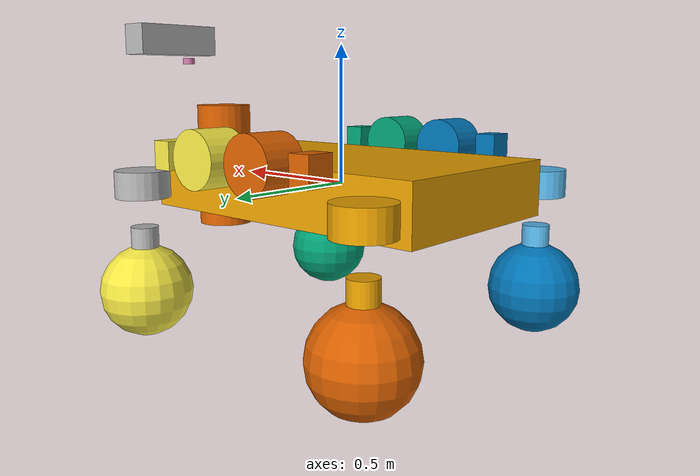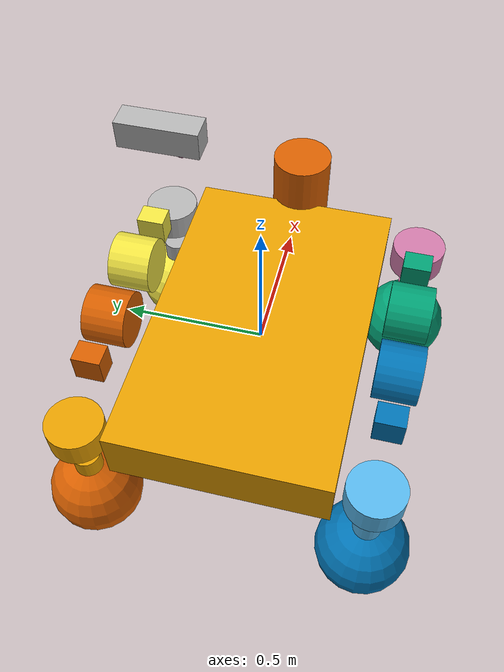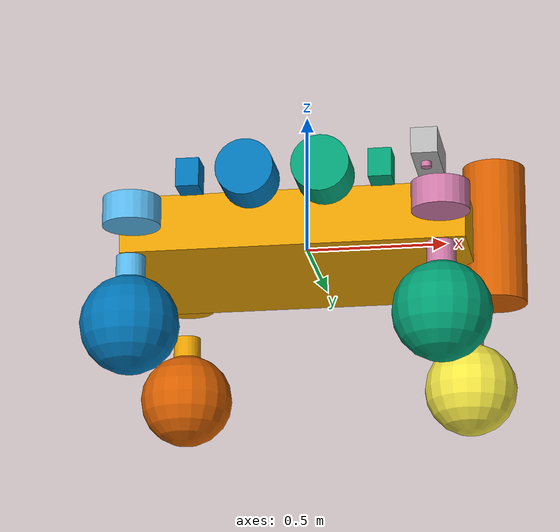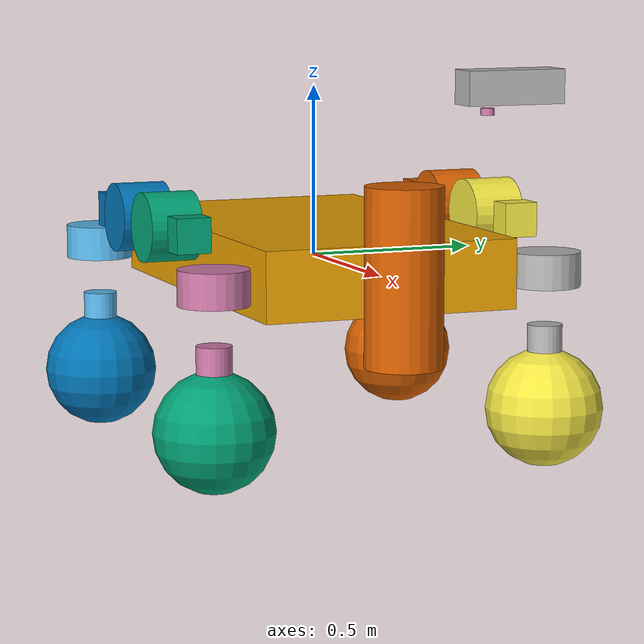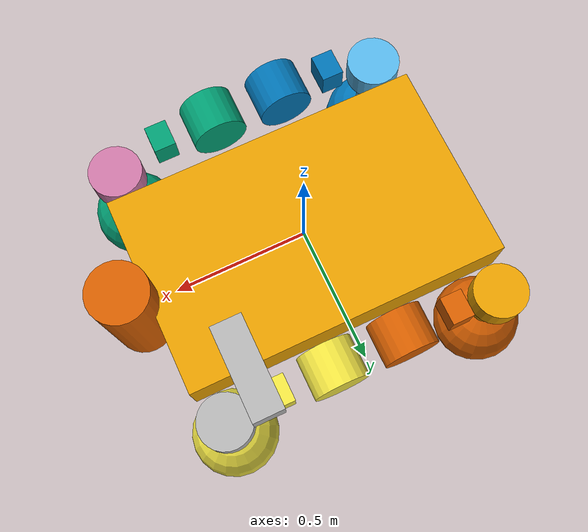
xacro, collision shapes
<?xml version="1.0"?>
<!--
	Space Robotics Challenge Phase 2
	NASA-JSC
	Copyright (c) 2020, All Rights Reserved
	Unauthorized distribution strictly prohibited
-->

<!--
    @brief small scout for srcp2 final rounds
-->
<robot name="small_scout" xmlns:xacro="http://ros.org/wiki/xacro">

   <xacro:arg name="rover_name" default="small_scout" />

    <!-- includes: hardware -->
    <xacro:include filename="../common/inertia_macros.xacro"/>
    <xacro:include filename="../small_basic/small_rover_chassis.xacro"/>
    <xacro:include filename="../small_basic/small_rover_drive.xacro"/>
    <xacro:include filename="../small_basic/small_rover_power.xacro"/>

    <!-- scout hardware -->
    <xacro:small_rover_chassis  rover_name="$(arg rover_name)"/>
    <xacro:small_rover_drive    rover_name="$(arg rover_name)"/>

    <!-- includes: sensor electronics -->
    <xacro:include filename="../small_basic/small_rover_sensors.xacro"/>
    <xacro:small_rover_camera_sensor    rover_name="$(arg rover_name)"/>
    <xacro:small_rover_imu_sensor       rover_name="$(arg rover_name)"/>
    <xacro:small_rover_lidar_sensor     rover_name="$(arg rover_name)"/>

    <xacro:include filename="../small_basic/small_rover_sensors.gazebo"/>

    <!-- includes: volatile sensor -->
    <xacro:include filename="./volatile_sensor.xacro"/>
    <xacro:volatile_sensor rover_name="$(arg rover_name)"/>

    <!-- includes: motors (drive and sensor) -->
    <xacro:include filename="./motors.gazebo"/>

    <gazebo>
        <plugin name="joint_state_publisher" filename="libJointStatePublisher.so">
            <robotNamespace>$(arg rover_name)</robotNamespace>
            <jointName>
                    bl_wheel_joint,
                    br_wheel_joint,
                    fl_wheel_joint,
                    fr_wheel_joint,
                    bl_steering_arm_tibia_joint,
                    br_steering_arm_tibia_joint,
                    fl_steering_arm_tibia_joint,
                    fr_steering_arm_tibia_joint,
                    bl_steering_arm_shoulder_joint,
                    br_steering_arm_shoulder_joint,
                    fl_steering_arm_shoulder_joint,
                    fr_steering_arm_shoulder_joint,
                    sensor_bar_pitch_joint,
                    sensor_bar_yaw_joint,
                    volatile_sensor_joint
            </jointName>
            <updateRate>100</updateRate>
            <alwaysOn>true</alwaysOn>
        </plugin>
    </gazebo>

</robot>

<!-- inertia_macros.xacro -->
<!--
	Space Robotics Challenge Phase 2
	NASA-JSC
	Copyright (c) 2020, All Rights Reserved
	Unauthorized distribution strictly prohibited
-->
<robot xmlns:xacro="http://www.ros.org/wiki/xacro">

    <!--
        @brief compute the moments of inertia of a cylinder
        @param m - mass (kg)
        @param r - radius (m)
        @param h - height (m)
    -->
    <xacro:macro name="cylinder_inertia" params="m r h">
        <inertia
            ixx="${m*(3.0*r*r+h*h)/12.0}" ixy = "0" ixz = "0"
            iyy="${m*(3.0*r*r+h*h)/12.0}" iyz = "0"
            izz="${m*r*r/2.0}"
        />
    </xacro:macro>

    <!--
        @brief compute the moments of inertia of a box
        @param m - mass (kg)
        @param x,y,z - dimensions (m)
    -->
    <xacro:macro name="box_inertia" params="m x y z">
        <inertia
            ixx="${m*(y*y+z*z)/12.0}" ixy = "0" ixz = "0"
            iyy="${m*(x*x+z*z)/12.0}" iyz = "0"
            izz="${m*(x*x+y*y)/12.0}"
        />
    </xacro:macro>

    <!--
        @brief compute the moments of inertia of a sphere
        @param m - mass (kg)
        @param r - radius (m)
    -->
    <xacro:macro name="sphere_inertia" params="m r">
        <inertia
            ixx="${2.0*m*r*r/5.0}" ixy = "0" ixz = "0"
            iyy="${2.0*m*r*r/5.0}" iyz = "0"
            izz="${2.0*m*r*r/5.0}"
        />
    </xacro:macro>
</robot>

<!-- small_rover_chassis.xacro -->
<!--
	Space Robotics Challenge Phase 2
	NASA-JSC
	Copyright (c) 2020, All Rights Reserved
	Unauthorized distribution strictly prohibited
-->
<robot xmlns:xacro="http://ros.org/wiki/xacro">

    <!--
       small rover chassis and all related constants
    -->
    <xacro:macro name="small_rover_chassis" params="rover_name">
        <xacro:include filename="../common/universal_chassis.xacro"/>

        <xacro:property name="chassis_collision_x" value="1.2"/>
        <xacro:property name="chassis_collision_y" value="0.75"/>
        <xacro:property name="chassis_collision_z" value="0.2"/>

        <xacro:universal_chassis
            chassis_name = "small_chassis"
            mass = "40.0"
            dae_path   = "meshes/rovers/small_basic/small_chassis.dae"
            visual_xyz = "0 0 0"
            visual_rpy = "0 0 ${pi/2}"
            visual_scale = "0.35 0.35 0.35"
            rover_name = "${rover_name}"/>

    </xacro:macro>
</robot>

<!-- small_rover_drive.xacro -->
<!--
	Space Robotics Challenge Phase 2
	NASA-JSC
	Copyright (c) 2020, All Rights Reserved
	Unauthorized distribution strictly prohibited
-->
<robot xmlns:xacro="http://ros.org/wiki/xacro">

    <xacro:macro name="small_rover_drive" params="rover_name">

        <xacro:property name="steering_arm_length" value="0.4"/>

        <xacro:property name="shoulder_mass"    value="2.00"/>  <!-- kg -->
        <xacro:property name="shoulder_length"  value="0.40"/>
        <xacro:property name="shoulder_joint_x" value="0.13"/>
        <xacro:property name="shoulder_joint_y" value="0.50"/>
        <xacro:property name="shoulder_joint_z" value="0.12"/>
        <xacro:property name="shoulder_joint_pitch" value="0.0"/>

        <xacro:property name="shoulder_joint_visual_scale" value="0.5 0.5 0.5"/>
        <xacro:property name="shoulder_joint_visual_xyz"   value="0 0 0"/>

        <xacro:property name="shoulder_upper_limit"    value="${pi/12.0}"/>  <!-- rads -->
        <xacro:property name="shoulder_lower_limit"    value="-${pi/12.0}"/> <!-- rads -->
        <xacro:property name="shoulder_velocity_limit" value="${pi/12.0}"/>  <!-- rads/sec -->
        <xacro:property name="shoulder_effort_limit"   value="1e4"/>         <!-- Nm -->

        <xacro:property name="shoulder_damping"   value="5" /> <!-- Nm/rad/s -->
        <xacro:property name="shoulder_friction"  value="5" /> <!-- Nm ??? -->
        <xacro:property name="shoulder_stiffness" value="400"/>  <!-- Nm/rads -->

        <xacro:property name="tibia_mass"                 value="10.0"/>      <!-- kg -->
        <xacro:property name="tibia_collision_length"     value="0.4"/>
        <xacro:property name="tibia_collision_radius"     value="0.05"/>
        <xacro:property name="ankle_joint_effort_limit"   value="200"/>       <!-- Nm -->
        <xacro:property name="ankle_joint_velocity_limit" value="${pi/4.0}"/> <!-- rad/sec -->

        <!-- all shoulder joints and femurs -->
        <xacro:include filename="../common/universal_shoulder.xacro"/>
        <xacro:property name="shoulder_mesh" value="meshes/rovers/small_basic/small_steering_arm.dae"/>

        <xacro:universal_shoulder
            name     = "${rover_name}_fr_steering_arm_shoulder"
            parent   = "${rover_name}_small_chassis"
            lr_sign  = "-1"
            fb_sign  = "1"
            visual_xyz="0 0 0"
            visual_rpy="0 0 ${pi/2}"
            shoulder="fr_steering_arm_shoulder"
        />

        <xacro:universal_shoulder
            name     = "${rover_name}_fl_steering_arm_shoulder"
            parent   = "${rover_name}_small_chassis"
            lr_sign  = "1"
            fb_sign  = "1"
            visual_xyz="0 0 0"
            visual_rpy="0 0 ${pi/2}"
            shoulder="fl_steering_arm_shoulder"
        />

        <!-- reset for the back arms, as they have to carry more weight -->
        <xacro:property name="shoulder_damping"   value="10" /> <!-- Nm/rad/s -->
        <xacro:property name="shoulder_friction"  value="10" /> <!-- Nm ??? -->
        <xacro:property name="shoulder_stiffness" value="600"/>  <!-- Nm/rads -->

        <xacro:universal_shoulder
            name     = "${rover_name}_br_steering_arm_shoulder"
            parent   = "${rover_name}_small_chassis"
            lr_sign  = "-1"
            fb_sign  = "-1"
            visual_xyz="0 0 0"
            visual_rpy="0 0 -${pi/2}"
            shoulder="br_steering_arm_shoulder"
        />

        <xacro:universal_shoulder
            name     = "${rover_name}_bl_steering_arm_shoulder"
            parent   = "${rover_name}_small_chassis"
            lr_sign  = "1"
            fb_sign  = "-1"
            visual_xyz="0 0 0"
            visual_rpy="0 0 -${pi/2}"
            shoulder="bl_steering_arm_shoulder"
        />

        <!-- All the Knee joints & tibias -->
        <xacro:include filename="../common/universal_tibia.xacro"/>
        <xacro:property name="tibia_mesh" value="meshes/rovers/small_basic/small_ankle.dae"/>

        <xacro:universal_tibia
            name        = "${rover_name}_fr_steering_arm_tibia"
            parent_name = "${rover_name}_fr_steering_arm_shoulder"
            visual_xyz  = "0 0 0"
            visual_rpy  = "0 0 ${pi/2}"
            visual_scale = "0.5 0.5 0.5"
            side_sign   = "-1"
            knee_joint_xyz="${steering_arm_length} 0 -0.12"
            tibia="fr_steering_arm_tibia"/>

        <xacro:universal_tibia
            name        = "${rover_name}_fl_steering_arm_tibia"
            parent_name = "${rover_name}_fl_steering_arm_shoulder"
            visual_xyz  = "0 0 0"
            visual_rpy  = "0 0 -${pi/2}"
            visual_scale = "0.5 0.5 0.5"
            side_sign   = "1"
            knee_joint_xyz="${steering_arm_length} 0 -0.12"
            tibia="fl_steering_arm_tibia"/>

        <xacro:universal_tibia
            name        = "${rover_name}_bl_steering_arm_tibia"
            parent_name = "${rover_name}_bl_steering_arm_shoulder"
            visual_xyz  = "0 0 0"
            visual_rpy  = "0 0 -${pi/2}"
            visual_scale = "0.5 0.5 0.5"
            side_sign   = "1"
            knee_joint_xyz="-${steering_arm_length} 0 -0.12"
            tibia="bl_steering_arm_tibia"/>

        <xacro:universal_tibia
            name        = "${rover_name}_br_steering_arm_tibia"
            parent_name = "${rover_name}_br_steering_arm_shoulder"
            visual_xyz  = "0 0 0"
            visual_rpy  = "0 0 ${pi/2}"
            visual_scale = "0.5 0.5 0.5"
            side_sign   = "-1"
            knee_joint_xyz="-${steering_arm_length} 0 -0.12"
            tibia="br_steering_arm_tibia"/>

        <!-- general wheel constanbts -->
        <xacro:property name="wheel_base"   value="1.0"/>
        <xacro:property name="wheel_length" value="1.0"/>
        <xacro:property name="wheel_radius" value="0.17"/>
        <xacro:property name="wheel_mass"   value="1.0"/>
        <xacro:property name="wheel_mesh"   value="meshes/rovers/common/wheel.dae"/>
        <xacro:property name="wheel_velocity_limit" value="${2*pi}"/>

        <!-- wheel axel properties -->
        <xacro:property name="wheel_effort_limit" value="300.0"/>
        <xacro:property name="wheel_damping"      value="0.1" />
        <xacro:property name="wheel_friction"     value="0.0" />

        <!-- wheel frictional model -->
        <xacro:property name="wheel_mu1"   value="0.5"/>
        <xacro:property name="wheel_mu2"   value="0.5"/>
        <xacro:property name="wheel_slip2" value="0.0"/>

        <!-- wheel torsional friction -->
        <xacro:property name="wheel_torsional_coef"   value="0.25"/>
        <xacro:property name="wheel_torsional_radius" value="0.025"/>

        <!-- wheel contact model -->
        <xacro:property name="wheel_kp"  value="1e12"/>
        <xacro:property name="wheel_kd"  value="0.8"/>
        <xacro:property name="wheel_soft_cfm" value="0.3"/>
        <xacro:property name="wheel_maxVel"   value="0.015"/>
        <xacro:property name="wheel_minDepth" value="0.10"/>

        <xacro:include filename="../common/universal_wheel.xacro"/>
        <xacro:small_wheel
            name="${rover_name}_fr_wheel"
            parent_name="${rover_name}_fr_steering_arm_tibia"
            visual_scale="0.55 0.55 0.55"
            visual_rpy="0 0 ${pi/2}"
            tibia_collision_length="-0.4"
            lr_sign = "-1"
            wheel="fr_wheel"/>

        <xacro:small_wheel
            name="${rover_name}_fl_wheel"
            parent_name="${rover_name}_fl_steering_arm_tibia"
            visual_scale="0.55 0.55 0.55"
            visual_rpy="0 0 ${pi/2}"
            tibia_collision_length="-0.4"
            lr_sign = "1"
            wheel="fl_wheel"/>

        <xacro:small_wheel
            name="${rover_name}_br_wheel"
            parent_name="${rover_name}_br_steering_arm_tibia"
            visual_scale="0.55 0.55 0.55"
            visual_rpy="0 0 ${pi/2}"
            tibia_collision_length="-0.4"
            lr_sign = "-1"
            wheel="br_wheel"/>

        <xacro:small_wheel
            name="${rover_name}_bl_wheel"
            parent_name="${rover_name}_bl_steering_arm_tibia"
            visual_scale="0.55 0.55 0.55"
            visual_rpy="0 0 ${pi/2}"
            tibia_collision_length="-0.4"
            lr_sign = "1"
            wheel="bl_wheel"/>

        <!-- _______________________________________________________________________________________________________________
            Common DRIVE, STEERING and BRAKE Plugins
        -->
        <gazebo>
            <plugin name="rover_brake" filename="libRoverBrakePlugin.so"/>
        </gazebo>

        <!-- _______________________________________________________________________________________________________________
            Localization
        -->
        <gazebo>
            <plugin name="rover_localization" filename="libRoverLocalization.so"/>
        </gazebo>

    </xacro:macro>
</robot>

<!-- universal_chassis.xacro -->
<!--
	Space Robotics Challenge Phase 2
	NASA-JSC
	Copyright (c) 2020, All Rights Reserved
	Unauthorized distribution strictly prohibited
-->
<robot xmlns:xacro="http://ros.org/wiki/xacro">

    <xacro:macro name="universal_chassis" params="chassis_name mass dae_path visual_xyz visual_rpy visual_scale rover_name">

        <link name="${rover_name}_${chassis_name}">
            <collision name="${rover_name}_${chassis_name}_collision">
                <origin
                    xyz="0 0 0"
                    rpy="0 0 0"/>
               <geometry>
                    <box size = "${chassis_collision_x} ${chassis_collision_y} ${chassis_collision_z}"/>
                </geometry>
            </collision>

            <visual name="${rover_name}_${chassis_name}_visual">
                <origin
                    xyz="${visual_xyz}"
                    rpy="${visual_rpy}"/>
               <geometry>
                    <mesh
                        filename = "package://srcp2_models_final/${dae_path}"
                        scale = "${visual_scale}"/>
                </geometry>
            </visual>

            <inertial>
                <origin
                    xyz="0 0 0"
                    rpy="0 0 0"/>
                <mass value="${mass}"/>
                <xacro:box_inertia
                    m = "${mass}"
                    x = "${chassis_collision_x}"
                    y = "${chassis_collision_y}"
                    z = "${chassis_collision_z}"/>
            </inertial>
        </link>

        <link name="${rover_name}_base_footprint" />
        <joint name="base_joint" type="fixed">
            <origin
                xyz="0 0 0"
                rpy="0 0 0" />
            <parent link="${rover_name}_base_footprint"/>
            <child link="${rover_name}_${chassis_name}"/>
        </joint>

    </xacro:macro>
</robot>

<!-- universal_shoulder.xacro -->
<!--
	Space Robotics Challenge Phase 2
	NASA-JSC
	Copyright (c) 2020, All Rights Reserved
	Unauthorized distribution strictly prohibited
-->
<robot xmlns:xacro="http://ros.org/wiki/xacro">

    <!--
        TODO: Transmission
        Is transmission necessary for unpowered joints?
        Is it necessary at all for new style motors?
    -->

    <xacro:macro name="universal_shoulder" params="name parent lr_sign fb_sign visual_xyz visual_rpy shoulder">

        <!-- arm collision box dimensions (meters) -->
        <xacro:property name="femur_box_x" value="${shoulder_length}"/>
        <xacro:property name="femur_box_y" value="0.1"/>
        <xacro:property name="femur_box_z" value="0.1"/>

        <!-- as this is where the arm joins the body, strut and shoulder origins are relative to this-->
        <xacro:macro name="shoulder_joint_origin">
            <origin
                xyz="${fb_sign*shoulder_joint_x} ${lr_sign*shoulder_joint_y} ${shoulder_joint_z}"
                rpy="0 ${fb_sign * shoulder_joint_pitch} 0"/>
        </xacro:macro>
        <xacro:macro name="shoulder_strut_origin">
            <origin
                xyz="${fb_sign * (femur_box_x/2.0)} 0 0"
                rpy="0 0 0"/>
        </xacro:macro>
        <xacro:macro name="strut_visual_origin">
            <origin
                xyz="${visual_xyz}"
                rpy="${visual_rpy}"/>
        </xacro:macro>

        <!-- Main Steering Arm Geometry -->
        <link name="${name}">

            <collision name="${name}_strut_collision">
                <xacro:shoulder_strut_origin/>
                <geometry>
                    <box size = "${femur_box_x*0.2} ${femur_box_y} ${femur_box_z}"/>
                </geometry>
            </collision>
            <visual name="${name}_strut_visual">
                <xacro:strut_visual_origin/>
                <geometry>
                    <mesh
                        filename = "package://srcp2_models_final/${shoulder_mesh}"
                        scale = "${shoulder_joint_visual_scale}"/>
                </geometry>
            </visual>

            <collision name="${name}_collision">
                <origin
                    xyz="0 0 0"
                    rpy="${pi/2.0} 0 0"/>
                <geometry>
                    <cylinder length="${1.5*femur_box_y}" radius="${femur_box_z}"/>
                </geometry>
            </collision>

            <!-- only the strut has inertial presense -->
            <inertial>
                <mass value = "${shoulder_mass}"/>
                <xacro:shoulder_strut_origin/>
                <xacro:box_inertia
                    m = "${shoulder_mass}"
                    x = "${femur_box_x}"
                    y = "${femur_box_y}"
                    z = "${femur_box_z}"/>
            </inertial>
        </link>

        <!-- connection of steering arm to rover chassis -->
        <joint name="${shoulder}_joint" type="revolute">
            <xacro:shoulder_joint_origin/>
            <parent link = "${parent}"/>
            <child  link = "${name}"/>
            <axis xyz="0 1 0" rpy="0 0 0" />
            <fdir1>0 1 0</fdir1>
            <dynamics
                damping  = "${shoulder_damping}"
                friction = "${shoulder_friction}"/>
            <limit
                upper    = "${shoulder_upper_limit}"
                lower    = "${shoulder_lower_limit}"
                effort   = "${shoulder_effort_limit}"
                velocity = "${shoulder_velocity_limit}"/>
        </joint>

        <!-- non URDF Gazebo Specific Physics for chassis connection joint -->
        <gazebo reference="${shoulder}_joint">
            <implicitSpringDamper>true</implicitSpringDamper>
            <springStiffness>${shoulder_stiffness}</springStiffness>
            <springReference>0</springReference>
        </gazebo>

        <!-- todo: as this is an unpowered joint, is this necessary? -->

    </xacro:macro>
</robot>

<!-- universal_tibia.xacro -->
<!--
	Space Robotics Challenge Phase 2
	NASA-JSC
	Copyright (c) 2020, All Rights Reserved
	Unauthorized distribution strictly prohibited
-->
<robot xmlns:xacro="http://ros.org/wiki/xacro">
    <xacro:macro name="universal_tibia" params="name parent_name visual_xyz visual_rpy visual_scale side_sign knee_joint_xyz tibia">

        <!-- this is where the knee joins the strut, and knee ankle links origins are relative to this -->
        <xacro:macro name="knee_joint_origin">
            <origin
                xyz="${knee_joint_xyz}"
                rpy="0 0 0"/>
        </xacro:macro>
        <xacro:macro name="knee_motor_origin">
            <origin
                xyz="0 0 0"
                rpy="0 0 0"/>
        </xacro:macro>
        <xacro:macro name="tibia_strut_origin">
            <origin
                xyz="0 0 ${-tibia_collision_length/2.0}"
                rpy="0 0 0"/>
        </xacro:macro>

        <!-- Knee Link Geometry -->
        <link name="${name}">

            <collision name="${name}_knee_joint_collision">
                <xacro:knee_motor_origin/>
                <geometry>
                    <cylinder radius="0.1" length="0.1"/>
                </geometry>
            </collision>

            <collision name="${name}_strut_collision">
                <xacro:tibia_strut_origin/>
                <geometry>
                    <cylinder radius="${tibia_collision_radius}" length="${0.2*tibia_collision_length}"/>
                </geometry>
            </collision>
            <visual name="${name}_strut_visual">
                <origin
                    xyz="${visual_xyz}"
                    rpy="${visual_rpy}"/>
               <geometry>
                    <mesh
                        filename = "package://srcp2_models_final/${tibia_mesh}"
                        scale = "${visual_scale}"/>
                </geometry>
            </visual>

            <inertial>
                <mass value = "${tibia_mass}"/>
                <xacro:tibia_strut_origin/>
                <xacro:cylinder_inertia
                    m="${tibia_mass}"
                    r="${tibia_collision_radius}"
                    h="${tibia_collision_length}"/>
            </inertial>
        </link>

        <!-- connection of tibia to steering arm chassis  -->
        <joint name="${tibia}_joint" type="revolute">
            <xacro:knee_joint_origin/>
            <parent link = "${parent_name}"/>
            <child  link = "${name}"/>
            <axis xyz="0 0 1" rpy="0 0 0" />
            <fdir1>0 1 0</fdir1>
            <limit
                effort   = "${ankle_joint_effort_limit}"
                velocity = "${ankle_joint_velocity_limit}"
                upper    = "${pi}"
                lower    = "${-pi}"/>
        </joint>

        <gazebo reference="${tibia}_joint">
            <provideFeedback>true</provideFeedback>
        </gazebo>

    </xacro:macro>
</robot>

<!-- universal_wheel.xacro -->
<!--
	Space Robotics Challenge Phase 2
	NASA-JSC
	Copyright (c) 2020, All Rights Reserved
	Unauthorized distribution strictly prohibited
-->
<robot xmlns:xacro="http://ros.org/wiki/xacro">

    <xacro:macro name="small_wheel" params="name parent_name lr_sign visual_scale visual_rpy tibia_collision_length wheel">

        <xacro:macro name="small_wheel_joint_origin">
            <origin
                xyz="0 0 ${tibia_collision_length}"
                rpy="0 0 0"/>
        </xacro:macro>
        <xacro:macro name="collision_origin">
            <origin
                xyz="0 0 0"
                rpy="0 0 0"/>
        </xacro:macro>
        <xacro:macro name="visual_origin">
            <origin
                xyz="0 0 0"
                rpy="${visual_rpy}"/>
        </xacro:macro>

        <link name="${name}">
            <collision name="${name}_colision">
                <xacro:collision_origin/>
                <geometry>
                    <sphere radius="${wheel_radius}"/>
                </geometry>
                <surface>
                    <contact>
                        <ode>
                            <kp>${wheel_kp}</kp>
                            <kd>${wheel_kd}</kd>
                            <mu1>${wheel_mu1}</mu1>
                            <mu2>${wheel_mu2}</mu2>
                            <soft_cfm>${wheel_soft_cfm}</soft_cfm>
                            <slip2>${wheel_slip2}</slip2>
                            <maxVel>${wheel_maxVel}</maxVel>
                            <minDepth>${wheel_minDepth}</minDepth>
                        </ode>
                    </contact>
                </surface>
            </collision>

            <visual name="${name}_visual">
                <xacro:visual_origin/>
                <geometry>
                    <mesh
                        filename = "package://srcp2_models_final/${wheel_mesh}"
                        scale = "${visual_scale}"/>
                </geometry>
            </visual>

            <inertial>
                <xacro:collision_origin/>
                <mass value="${wheel_mass}"/>
                <xacro:cylinder_inertia
                    m="${wheel_mass}"
                    r="${wheel_radius}"
                    h="${wheel_base}"/>
            </inertial>
        </link>

        <joint name="${wheel}_joint" type="continuous">
            <xacro:small_wheel_joint_origin/>
            <parent link = "${parent_name}"/>
            <child  link = "${name}"/>
            <axis
                xyz = "0 1 0"
                rpy = "0 0 0" />
            <limit
                effort   = "${wheel_effort_limit}"
                velocity = "${wheel_velocity_limit}"/>
            <dynamics
                damping  = "${wheel_damping}"
                friction = "${wheel_friction}"/>
        </joint>

        <gazebo reference="${wheel}_joint">
            <provideFeedback>true</provideFeedback>
        </gazebo>

    </xacro:macro>
</robot>

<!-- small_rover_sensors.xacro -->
<!--
	Space Robotics Challenge (2)
	NASA-JSC
	Copyright (c) 2020, All Rights Reserved
	Unauthorized distribution strictly prohibited
-->
<robot xmlns:xacro="http://www.ros.org/wiki/xacro">
  <xacro:macro name="small_rover_camera_sensor" params="rover_name">

    <xacro:property name="camera_size_x" value="0.10"/> <!-- meters-->
    <xacro:property name="camera_size_y" value="0.30"/> <!-- meters-->
    <xacro:property name="camera_size_z" value="0.10"/> <!-- meters-->
    <xacro:property name="camera_mass"   value="2.0"/>  <!-- kg -->

    <xacro:macro name="sensor_bar_yaw_joint_origin">
      <origin xyz="0.39 0.38 0.44" rpy="0 0 0"/>
    </xacro:macro>
    <xacro:macro name="sensor_bar_pitch_joint_origin">
      <origin xyz="0.0 0.0 0.02" rpy="0 0 0"/>
    </xacro:macro>

  <!-- Empty link to give the sensor bar a yaw DoF
       (motor plugin does not control multi-dof single joints) -->
    <link name="${rover_name}_sensor_bar_yaw_motor">
      <collision>
          <geometry>
            <cylinder radius="0.02" length="0.02"/>
          </geometry>
      </collision>
      <visual>
          <geometry>
            <cylinder radius="0.02" length="0.02"/>
          </geometry>
      </visual>

      <inertial>
        <mass value="0.2"/>
        <xacro:cylinder_inertia
          m="0.2"
          r="0.02"
          h="0.02"/>
      </inertial>
    </link>

    <joint name="sensor_bar_yaw_joint" type="revolute">
      <xacro:sensor_bar_yaw_joint_origin/>
      <parent link="${rover_name}_small_chassis"/>
      <child  link="${rover_name}_sensor_bar_yaw_motor"/>
      <axis   xyz="0 0 1"/>
      <limit
              upper    = "${pi}"
              lower    = "-${pi}"
              effort   = "10"
              velocity = "0.01"/>
      <!-- Some joint damping is necessary for this joint, as it's a powerful -->
      <!-- motor and a light link. Without this, the PID controller must be  -->
      <!-- perfectly tuned to prevent oscillations -->
      <dynamics
            damping  = "10"
            friction = "1"/>
    </joint>

    <!-- The Sensor Bar, stereo-cameras, Lidar and spotlight live here -->
    <link name="${rover_name}_sensor_bar">

      <collision>
        <origin xyz="0 0.07 0.05" rpy="0 0 0"/>
        <geometry>
          <box size="${camera_size_x} ${camera_size_y} ${camera_size_z}"/>
        </geometry>
      </collision>

      <visual>
        <origin xyz="0.5 -0.335 -0.52" rpy="0 0 ${pi}"/>
        <geometry>
            <mesh
                filename = "package://srcp2_models_final/meshes/rovers/small_basic/sensor_bar.dae"
                scale    = "0.4 0.4 0.4"/>
        </geometry>
      </visual>

      <inertial>
        <origin xyz="0 0.07 0.05" rpy="0 0 0"/>
        <mass value="${camera_mass}"/>
        <xacro:box_inertia
            m="${camera_mass}"
            x="${camera_size_x}"
            y="${camera_size_y}"
            z="${camera_size_z}"/>
      </inertial>
    </link>

    <joint name="sensor_bar_pitch_joint" type="revolute">
      <xacro:sensor_bar_pitch_joint_origin/>
      <axis   xyz="0 1 0"/>
      <parent link="${rover_name}_sensor_bar_yaw_motor"/>
      <child  link="${rover_name}_sensor_bar"/>
      <limit
              upper    = "${pi/3}"
              lower    = "-${pi/3}"
              effort   = "3.0"
              velocity = "0.25"/>
     <!-- Some joint damping is necessary for this joint, as it's a powerful -->
     <!-- motor and a light link. Without this, the PID controller must be  -->
     <!-- perfectly tuned to prevent oscillations -->
      <dynamics
          damping  = "20"
          friction = "1"/>
    </joint>

    <!-- The Left Camera Optical Link -->
    <link name="${rover_name}_left_camera_optical">
    </link>
    <joint name="left_camera_optical_joint" type="fixed">
        <parent link="${rover_name}_sensor_bar"/>
        <child link="${rover_name}_left_camera_optical"/>
        <origin xyz="0.2 0.2 0.05" rpy="-1.57 0 -1.57"/>
    </joint>

    <!-- The Right Camera Optical Link -->
    <link name="${rover_name}_right_camera_optical">
    </link>
    <joint name="right_camera_optical_joint" type="fixed">
        <parent link="${rover_name}_sensor_bar"/>
        <child link="${rover_name}_right_camera_optical"/>
        <origin xyz="0.2 -0.01 0.05" rpy="-1.57 0 -1.57"/>
    </joint>

  </xacro:macro>

  <!-- The Small Rover Lidar -->
  <xacro:macro name="small_rover_lidar_sensor" params="rover_name">
      <link name="${rover_name}_lidar_link">
      </link>

      <joint name="lidar_joint" type="fixed">
          <parent link="${rover_name}_sensor_bar"/>
          <child link="${rover_name}_lidar_link"/>
          <origin xyz="0.1 0.075 0" rpy="0 0 0"/>
      </joint>

  </xacro:macro>

  <!-- The Small Rover IMU -->
  <xacro:macro name="small_rover_imu_sensor" params="rover_name">
      <xacro:property name="imuSize" value="0.05"/>
      <xacro:property name="imuMass" value="1e-5"/>

      <link name="${rover_name}_imu_link">
          <inertial>
              <origin xyz="0 0 0" rpy="0 ${pi/2} 0" />
              <mass value="${imuMass}" />
              <xacro:cylinder_inertia
              m="${imuMass}" r="${imuSize}" h="${imuSize}" />
          </inertial>
      </link>

      <joint name="imu_joint" type="fixed">
          <parent link="${rover_name}_small_chassis"/>
          <child link="${rover_name}_imu_link"/>
          <origin xyz="0 0 0" rpy="0 0 0"/>
      </joint>

  </xacro:macro>

</robot>

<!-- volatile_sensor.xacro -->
<!--
	Space Robotics Challenge Phase 2
	NASA-JSC
	Copyright (c) 2020, All Rights Reserved
	Unauthorized distribution strictly prohibited
-->

<!--
    @brief the small-scout's volatile sensor
    This is largely a cosmetic attachement, and something to hang the
    volatile sensor link off
-->
<robot xmlns:xacro="http://ros.org/wiki/xacro">

    <xacro:macro name="volatile_sensor" params="rover_name">

        <xacro:macro name="volatile_sensor_mount_origin">
            <origin
                xyz="0 0 0"
                rpy="0 0 0"/>
        </xacro:macro>
        <xacro:macro name="volatile_sensor_origin">
            <origin
                xyz="0 0 -0.19"
                rpy="0 0 0"/>
        </xacro:macro>

        <link name="$(arg rover_name)_volatile_sensor_mount">

            <collision name="$(arg rover_name)_volatile_sensor_mount_collision">
                <xacro:volatile_sensor_mount_origin/>
                <geometry>
                    <cylinder radius="0.1" length="0.01"/>
                </geometry>
            </collision>

             <visual name="$(arg rover_name)_volatile_sensor_mount_visual">
                <origin
                    xyz="-0.59 0 -0.05"
                    rpy="0 0 ${pi/2.0}"/>
                <geometry>
                    <mesh
                        filename = "package://srcp2_models_final/meshes/rovers/small_scout/volatile_sensor.dae"
                        scale    = "0.37 0.37 0.37"/>
                </geometry>
            </visual>

            <inertial>
                <xacro:volatile_sensor_mount_origin/>
                <mass value="0.001"/>
                <xacro:cylinder_inertia
                    m="0.001"
                    r="0.1"
                    h="0.01"/>
            </inertial>
        </link>

        <!-- this guard the sensor colllision ther to fix collission qwerk with revolute.-->

        <link name="$(arg rover_name)_volatile_sensor_guard">
            <collision name="${rover_name}_volatile_sensor_collision_guard">
                <origin
                    xyz="0 0 0.12"
                    rpy="0 0 0"/>
                <geometry>
                    <cylinder radius="0.11" length="0.50"/>
                </geometry>
            </collision>

            <inertial>
                <origin
                    xyz="0 0 0"
                    rpy="0 0 0"/>
                <mass value="0.001"/>
                <xacro:cylinder_inertia
                    m="0.001"
                    r="0.11"
                    h="0.50"/>
            </inertial>
        </link>

        <!-- this is the part we reference for scoring and volatile detection -->
        <link name="$(arg rover_name)_volatile_sensor">
            <collision name="$(arg rover_name)_volatile_sensor_collision">
                <origin
                    xyz="0 0 0"
                    rpy="0 0 0"/>
                <geometry>
                    <cylinder radius="0.1" length="0.01"/>
                </geometry>
            </collision>
            <inertial>
                <xacro:volatile_sensor_mount_origin/>
                <mass value="0.001"/>
                <xacro:cylinder_inertia
                    m="0.001"
                    r="0.025"
                    h="0.01"/>
            </inertial>
        </link>

        <!-- bolt the sensor _ to the chassis -->
        <joint name="volatile_sensor_mount_joint" type="fixed">
            <origin xyz="0.67 0.0 -0.1" rpy="0 0 0"/>
            <parent link = "$(arg rover_name)_small_chassis" />
            <child  link = "$(arg rover_name)_volatile_sensor_mount"/>
        </joint>

        <joint name="volatile_sensor_guard_joint" type="fixed">
            <origin xyz="0.67 0.0 -0.1" rpy="0 0 0"/>
            <parent link = "$(arg rover_name)_small_chassis" />
            <child  link = "$(arg rover_name)_volatile_sensor_guard"/>
        </joint>

        <!-- fix the sensor tip to the sensor body. This is a revolute joint to
             keep it from being integrated into the chassis, but it does not
             really turn -->
        <joint name="volatile_sensor_joint" type="revolute">
            <origin xyz="0.0 0.0 0.0" rpy="0 0 0"/>
            <parent link = "$(arg rover_name)_volatile_sensor_mount"/>
            <child  link = "$(arg rover_name)_volatile_sensor"/>
            <axis xyz="1 0 0" rpy="0 0 0"/>
             <limit
                upper    = "0.01"
                lower    = "-0.01"
                effort   = "1e9"
                velocity = "0.01"/>
            <dynamics
                damping  = "1"
                friction = "0.5"/>
        </joint>

        <gazebo reference='volatile_sensor_joint'>
            <preserveFixedJoint>true</preserveFixedJoint>
        </gazebo>

        <gazebo reference='volatile_sensor_mount_joint'>
            <preserveFixedJoint>true</preserveFixedJoint>
        </gazebo>

        <!--gazebo lib -->
        <gazebo>
            <plugin filename="libVolatileSensor.so" name="VolatileSensorPlugin">
                <publish_interval>0.2</publish_interval>
                <publish_inrange_only>false</publish_inrange_only>
                <sensor_topic>volatile_sensor</sensor_topic>
                <sensing_range>2.0</sensing_range>
                <initial_volatile_depth>5.0</initial_volatile_depth>
                <depleted_volatile_depth>25.0</depleted_volatile_depth>
                <sensor_link>$(arg rover_name)_volatile_sensor</sensor_link>
            </plugin>
        </gazebo>

    </xacro:macro>
</robot>
